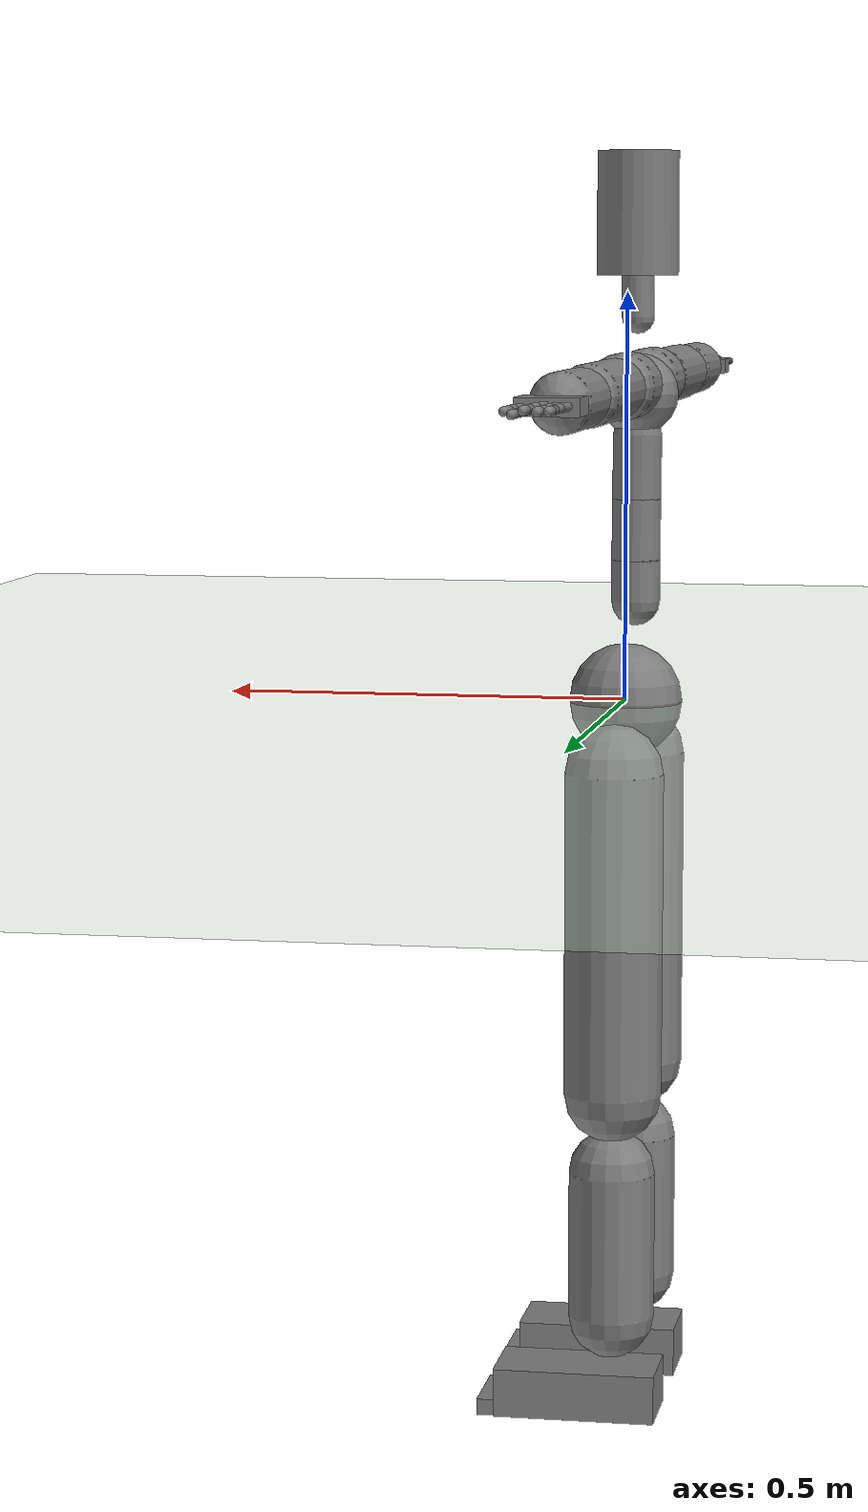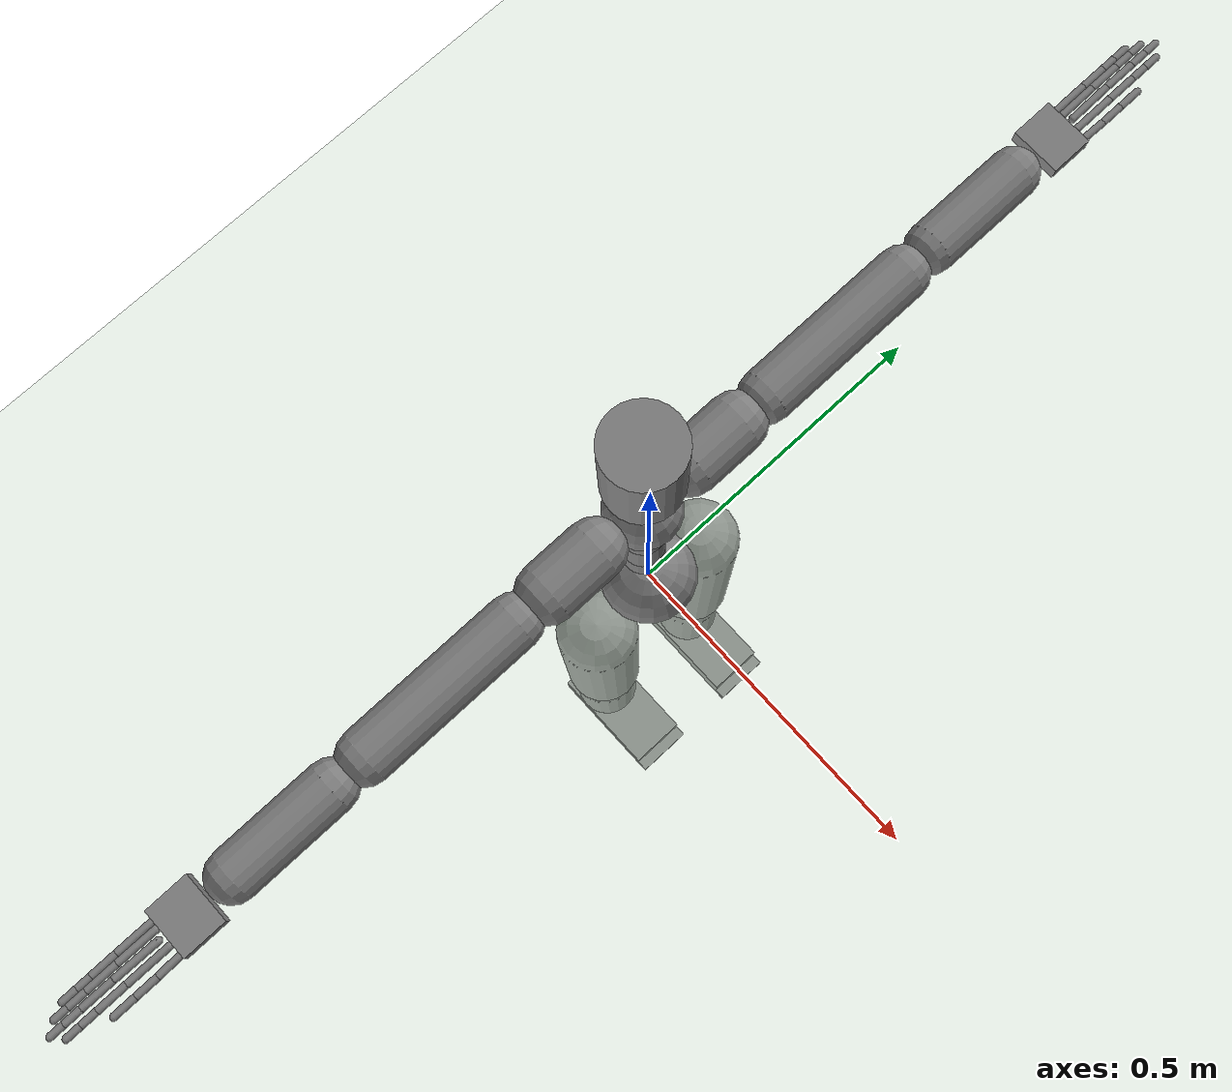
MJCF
<!-- change the damping from 50 to 500 -->
<mujoco model="humanoid">
  <compiler coordinate="local"/>
  <statistic extent="2" center="0 0 1"/>
  <option timestep="0.00555"/>
  <default>
    <motor ctrlrange="-1 1" ctrllimited="true"/>
    <geom type="capsule" condim="1" friction="1.0 0.05 0.05" solimp=".9 .99 .003" solref=".015 1"/>
    <joint type="hinge" damping="0.1" stiffness="5" armature=".007" limited="true" solimplimit="0 .99 .01"/>
    <site size=".04" group="3"/>
    <default class="force-torque">
      <site type="box" size=".01 .01 .02" rgba="1 0 0 1"/>
    </default>
    <default class="touch">
      <site type="capsule" rgba="0 0 1 .3"/>
    </default>
  </default>
  <asset>
    <texture type="skybox" builtin="gradient" rgb1=".4 .5 .6" rgb2="0 0 0" width="100" height="100"/>
    <texture builtin="flat" height="1278" mark="cross" markrgb="1 1 1" name="texgeom" random="0.01" rgb1="0.8 0.6 0.4" rgb2="0.8 0.6 0.4" type="cube" width="127"/>
    <texture builtin="checker" height="100" name="texplane" rgb1="0 0 0" rgb2="0.8 0.8 0.8" type="2d" width="100"/>
    <material name="MatPlane" reflectance="0.5" shininess="1" specular="1" texrepeat="60 60" texture="texplane"/>
    <material name="geom" texture="texgeom" texuniform="true"/>
  </asset>
  <worldbody>
    <light cutoff="100" diffuse="1 1 1" dir="-0 0 -1.3" directional="true" exponent="1" pos="0 0 1.3" specular=".1 .1 .1"/>
    <geom conaffinity="1" condim="3" name="floor" pos="0 0 0" rgba="0.8 0.9 0.8 1" size="100 100 .2" type="plane" material="MatPlane"/>
    <body name="pHipOrigin" pos="0 0 0">
      <freejoint name="pHipOrigin"/>
      <geom type="sphere" contype="1" conaffinity="1" density="4629.6296296296305" size="0.07011" pos="0.0000 0.0000 -0.0000"/>
      <body name="jL5S1" pos="-0.011425344862674696 0.0 0.10282781383579256">
        <geom type="capsule" contype="1" conaffinity="1" density="1000" fromto="0 0 0.02 0.0 0.0 0.07094710320234299" size="0.03"/>
        <joint name="jL5S1_x" type="hinge" pos="0 0 0" axis="1 0 0" stiffness="500" damping="500" armature="0.02" range="-180.0000 180.0000"/>
        <joint name="jL5S1_y" type="hinge" pos="0 0 0" axis="0 1 0" stiffness="500" damping="500" armature="0.02" range="-180.0000 180.0000"/>
        <joint name="jL5S1_z" type="hinge" pos="0 0 0" axis="0 0 1" stiffness="500" damping="500" armature="0.02" range="-180.0000 180.0000"/>
        <body name="jL4L3" pos="0.0 0.0 0.07094710320234299">
          <geom type="capsule" contype="1" conaffinity="1" density="1000" fromto="0 0 0 -0.0005797881968791788 0.0 0.0751508288362336" size="0.03"/>
          <joint name="jL4L3_x" type="hinge" pos="0 0 0" axis="1 0 0" stiffness="500" damping="500" armature="0.02" range="-180.0000 180.0000"/>
          <joint name="jL4L3_y" type="hinge" pos="0 0 0" axis="0 1 0" stiffness="500" damping="500" armature="0.02" range="-180.0000 180.0000"/>
          <joint name="jL4L3_z" type="hinge" pos="0 0 0" axis="0 0 1" stiffness="500" damping="500" armature="0.02" range="-180.0000 180.0000"/>
          <body name="jL1T12" pos="-0.0005797881968791788 0.0 0.0751508288362336">
            <geom type="capsule" contype="1" conaffinity="1" density="1000" fromto="0 0 0 -0.0006019627931392358 0.0 0.07787338147728723" size="0.03"/>
            <joint name="jL1T12_x" type="hinge" pos="0 0 0" axis="1 0 0" stiffness="500" damping="500" armature="0.02" range="-180.0000 180.0000"/>
            <joint name="jL1T12_y" type="hinge" pos="0 0 0" axis="0 1 0" stiffness="500" damping="500" armature="0.02" range="-180.0000 180.0000"/>
            <joint name="jL1T12_z" type="hinge" pos="0 0 0" axis="0 0 1" stiffness="500" damping="500" armature="0.02" range="-180.0000 180.0000"/>
            <body name="jT9T8" pos="-0.0006019627931392358 0.0 0.07787338147728723">
              <geom type="sphere" contype="1" conaffinity="1" density="1000" size="0.05011" pos="0.0000 0.0000 0.050000"/>
              <joint name="jT9T8_x" type="hinge" pos="0 0 0" axis="1 0 0" stiffness="500" damping="500" armature="0.02" range="-180.0000 180.0000"/>
              <joint name="jT9T8_y" type="hinge" pos="0 0 0" axis="0 1 0" stiffness="500" damping="500" armature="0.02" range="-180.0000 180.0000"/>
              <joint name="jT9T8_z" type="hinge" pos="0 0 0" axis="0 0 1" stiffness="500" damping="500" armature="0.02" range="-180.0000 180.0000"/>
              <body name="jT1C7" pos="0.0 0.0 0.11337298154830933">
                <geom type="capsule" contype="1" conaffinity="1" density="1000" fromto="0 0 0.03 0.0009471419075879093 0.0 0.08028245981936687" size="0.02"/>
                <joint name="jT1C7_x" type="hinge" pos="0 0 0" axis="1 0 0" stiffness="500" damping="500" armature="0.02" range="-180.0000 180.0000"/>
                <joint name="jT1C7_y" type="hinge" pos="0 0 0" axis="0 1 0" stiffness="500" damping="500" armature="0.02" range="-180.0000 180.0000"/>
                <joint name="jT1C7_z" type="hinge" pos="0 0 0" axis="0 0 1" stiffness="500" damping="500" armature="0.02" range="-180.0000 180.0000"/>
                <body name="jC1Head" pos="0.0009471419075879093 0.0 0.08028245981936687">
                  <geom type="cylinder" contype="1" conaffinity="1" density="1000" fromto="0 0 0 0 0 0.15" size="0.05"/>
                  <joint name="jC1Head_x" type="hinge" pos="0 0 0" axis="1 0 0" stiffness="500" damping="500" armature="0.02" range="-180.0000 180.0000"/>
                  <joint name="jC1Head_y" type="hinge" pos="0 0 0" axis="0 1 0" stiffness="500" damping="500" armature="0.02" range="-180.0000 180.0000"/>
                  <joint name="jC1Head_z" type="hinge" pos="0 0 0" axis="0 0 1" stiffness="500" damping="500" armature="0.02" range="-180.0000 180.0000"/>
                </body>
              </body>
              <body name="jRightT4Shoulder" pos="0.0 -0.02613416295799374 0.06372082527687808">
                <geom type="capsule" contype="1" conaffinity="1" density="1000" fromto="0 -0.05 0 0.0 -0.12579043209552765 0.0" size="0.04"/>
                <joint name="jRightT4Shoulder_x" type="hinge" pos="0 0 0" axis="1 0 0" stiffness="500" damping="500" armature="0.02" range="-180.0000 180.0000"/>
                <joint name="jRightT4Shoulder_y" type="hinge" pos="0 0 0" axis="0 1 0" stiffness="500" damping="500" armature="0.02" range="-180.0000 180.0000"/>
                <joint name="jRightT4Shoulder_z" type="hinge" pos="0 0 0" axis="0 0 1" stiffness="500" damping="500" armature="0.02" range="-180.0000 180.0000"/>
                <body name="jRightShoulder" pos="0.0 -0.12579043209552765 0.0">
                  <geom type="capsule" contype="1" conaffinity="1" density="1000" fromto="0 -0.05 0 0.0 -0.27853596210479736 0.0" size="0.036"/>
                  <joint name="jRightShoulder_x" type="hinge" pos="0 0 0" axis="1 0 0" stiffness="500" damping="500" armature="0.02" range="-180.0000 180.0000"/>
                  <joint name="jRightShoulder_y" type="hinge" pos="0 0 0" axis="0 1 0" stiffness="500" damping="500" armature="0.02" range="-180.0000 180.0000"/>
                  <joint name="jRightShoulder_z" type="hinge" pos="0 0 0" axis="0 0 1" stiffness="500" damping="500" armature="0.02" range="-180.0000 180.0000"/>
                  <body name="jRightElbow" pos="0.0 -0.27853596210479736 0.0">
                    <geom type="capsule" contype="1" conaffinity="1" density="1000" fromto="0 -0.05 0 0.00010477973115465072 -0.19433485379421794 0.0" size="0.034"/>
                    <joint name="jRightElbow_x" type="hinge" pos="0 0 0" axis="1 0 0" stiffness="500" damping="500" armature="0.02" range="-180.0000 180.0000"/>
                    <joint name="jRightElbow_y" type="hinge" pos="0 0 0" axis="0 1 0" stiffness="500" damping="500" armature="0.02" range="-180.0000 180.0000"/>
                    <joint name="jRightElbow_z" type="hinge" pos="0 0 0" axis="0 0 1" stiffness="500" damping="500" armature="0.02" range="-180.0000 180.0000"/>
                    <body name="jRightWrist" pos="0.00010477973115465072 -0.26033485379421795 0.0">
                      <geom density="1000" type="box" pos="0 0 0" size="0.035 0.03 0.01" quat="1.0 0 0 0"/>
                      <joint name="jRightWrist_x" type="hinge" pos="0 0 0" axis="1 0 0" stiffness="500" damping="500" armature="0.02" range="-180.0000 180.0000"/>
                      <joint name="jRightWrist_y" type="hinge" pos="0 0 0" axis="0 1 0" stiffness="500" damping="500" armature="0.02" range="-180.0000 180.0000"/>
                      <joint name="jRightWrist_z" type="hinge" pos="0 0 0" axis="0 0 1" stiffness="500" damping="500" armature="0.02" range="-180.0000 180.0000"/>
                      <body name="jRightFirstCMC" pos="0.027377404 -0.026242778 -0.0012398164">
                        <geom type="capsule" contype="1" conaffinity="1" density="1000" fromto="0 0 0 0.001369310193695128 -0.038641028106212616 0.000816482410300523" size="0.005"/>
                        <joint name="jRightFirstCMC_x" type="hinge" pos="0 0 0" axis="1 0 0" stiffness="500" damping="500" armature="0.02" range="-180.0000 180.0000"/>
                        <joint name="jRightFirstCMC_y" type="hinge" pos="0 0 0" axis="0 1 0" stiffness="500" damping="500" armature="0.02" range="-180.0000 180.0000"/>
                        <joint name="jRightFirstCMC_z" type="hinge" pos="0 0 0" axis="0 0 1" stiffness="500" damping="500" armature="0.02" range="-180.0000 180.0000"/>
                        <body name="jRightFirstMCP" pos="0.0013693102 -0.038641028 0.0008164824">
                          <geom type="capsule" contype="1" conaffinity="1" density="1000" fromto="0 0 0 0.0 -0.03138667345046997 0.0" size="0.005"/>
                          <joint name="jRightFirstMCP_x" type="hinge" pos="0 0 0" axis="1 0 0" stiffness="500" damping="500" armature="0.02" range="-180.0000 180.0000"/>
                          <joint name="jRightFirstMCP_y" type="hinge" pos="0 0 0" axis="0 1 0" stiffness="500" damping="500" armature="0.02" range="-180.0000 180.0000"/>
                          <joint name="jRightFirstMCP_z" type="hinge" pos="0 0 0" axis="0 0 1" stiffness="500" damping="500" armature="0.02" range="-180.0000 180.0000"/>
                          <body name="jRightIP" pos="0.0 -0.031386673 0.0">
                            <geom type="capsule" contype="1" conaffinity="1" density="1000" fromto="0 0 0 0.0 -0.031366512179374695 0.0" size="0.005"/>
                            <joint name="jRightIP_x" type="hinge" pos="0 0 0" axis="1 0 0" stiffness="500" damping="500" armature="0.02" range="-180.0000 180.0000"/>
                            <joint name="jRightIP_y" type="hinge" pos="0 0 0" axis="0 1 0" stiffness="500" damping="500" armature="0.02" range="-180.0000 180.0000"/>
                            <joint name="jRightIP_z" type="hinge" pos="0 0 0" axis="0 0 1" stiffness="500" damping="500" armature="0.02" range="-180.0000 180.0000"/>
                          </body>
                        </body>
                      </body>
                      <body name="jRightSecondCMC" pos="0.011870263 -0.034681153 -0.00060492347">
                        <geom type="capsule" contype="1" conaffinity="1" density="1000" fromto="0 0 0 -0.0003813645162153989 -0.06082478165626526 -0.0006309545715339482" size="0.005"/>
                        <joint name="jRightSecondCMC_x" type="hinge" pos="0 0 0" axis="1 0 0" stiffness="500" damping="500" armature="0.02" range="-180.0000 180.0000"/>
                        <joint name="jRightSecondCMC_y" type="hinge" pos="0 0 0" axis="0 1 0" stiffness="500" damping="500" armature="0.02" range="-180.0000 180.0000"/>
                        <joint name="jRightSecondCMC_z" type="hinge" pos="0 0 0" axis="0 0 1" stiffness="500" damping="500" armature="0.02" range="-180.0000 180.0000"/>
                        <body name="jRightSecondMCP" pos="-0.00038136452 -0.06082478 -0.0006309546">
                          <geom type="capsule" contype="1" conaffinity="1" density="1000" fromto="0 0 0 0.0 -0.04176747053861618 0.0" size="0.005"/>
                          <joint name="jRightSecondMCP_x" type="hinge" pos="0 0 0" axis="1 0 0" stiffness="500" damping="500" armature="0.02" range="-180.0000 180.0000"/>
                          <joint name="jRightSecondMCP_y" type="hinge" pos="0 0 0" axis="0 1 0" stiffness="500" damping="500" armature="0.02" range="-180.0000 180.0000"/>
                          <joint name="jRightSecondMCP_z" type="hinge" pos="0 0 0" axis="0 0 1" stiffness="500" damping="500" armature="0.02" range="-180.0000 180.0000"/>
                          <body name="jRightSecondPIP" pos="0.0 -0.04176747 0.0">
                            <geom type="capsule" contype="1" conaffinity="1" density="1000" fromto="0 0 0 0.0 -0.02283315360546112 0.0" size="0.005"/>
                            <joint name="jRightSecondPIP_x" type="hinge" pos="0 0 0" axis="1 0 0" stiffness="500" damping="500" armature="0.02" range="-180.0000 180.0000"/>
                            <joint name="jRightSecondPIP_y" type="hinge" pos="0 0 0" axis="0 1 0" stiffness="500" damping="500" armature="0.02" range="-180.0000 180.0000"/>
                            <joint name="jRightSecondPIP_z" type="hinge" pos="0 0 0" axis="0 0 1" stiffness="500" damping="500" armature="0.02" range="-180.0000 180.0000"/>
                            <body name="jRightSecondDIP" pos="0.0 -0.022833154 0.0">
                              <geom type="capsule" contype="1" conaffinity="1" density="1000" fromto="0 0 0 0.0 -0.020512670278549194 0.0" size="0.005"/>
                              <joint name="jRightSecondDIP_x" type="hinge" pos="0 0 0" axis="1 0 0" stiffness="500" damping="500" armature="0.02" range="-180.0000 180.0000"/>
                              <joint name="jRightSecondDIP_y" type="hinge" pos="0 0 0" axis="0 1 0" stiffness="500" damping="500" armature="0.02" range="-180.0000 180.0000"/>
                              <joint name="jRightSecondDIP_z" type="hinge" pos="0 0 0" axis="0 0 1" stiffness="500" damping="500" armature="0.02" range="-180.0000 180.0000"/>
                            </body>
                          </body>
                        </body>
                      </body>
                      <body name="jRightThirdCMC" pos="-0.00074524403 -0.040301077 0.0016943185">
                        <geom type="capsule" contype="1" conaffinity="1" density="1000" fromto="0 0 0 -0.0007466499228030443 -0.06186005845665932 0.001682974398136139" size="0.005"/>
                        <joint name="jRightThirdCMC_x" type="hinge" pos="0 0 0" axis="1 0 0" stiffness="500" damping="500" armature="0.02" range="-180.0000 180.0000"/>
                        <joint name="jRightThirdCMC_y" type="hinge" pos="0 0 0" axis="0 1 0" stiffness="500" damping="500" armature="0.02" range="-180.0000 180.0000"/>
                        <joint name="jRightThirdCMC_z" type="hinge" pos="0 0 0" axis="0 0 1" stiffness="500" damping="500" armature="0.02" range="-180.0000 180.0000"/>
                        <body name="jRightThirdMCP" pos="-0.0007466499 -0.06186006 0.0016829744">
                          <geom type="capsule" contype="1" conaffinity="1" density="1000" fromto="0 0 0 0.0 -0.04531874507665634 0.0" size="0.005"/>
                          <joint name="jRightThirdMCP_x" type="hinge" pos="0 0 0" axis="1 0 0" stiffness="500" damping="500" armature="0.02" range="-180.0000 180.0000"/>
                          <joint name="jRightThirdMCP_y" type="hinge" pos="0 0 0" axis="0 1 0" stiffness="500" damping="500" armature="0.02" range="-180.0000 180.0000"/>
                          <joint name="jRightThirdMCP_z" type="hinge" pos="0 0 0" axis="0 0 1" stiffness="500" damping="500" armature="0.02" range="-180.0000 180.0000"/>
                          <body name="jRightThirdPIP" pos="0.0 -0.045318745 0.0">
                            <geom type="capsule" contype="1" conaffinity="1" density="1000" fromto="0 0 0 0.0 -0.024224743247032166 0.0" size="0.005"/>
                            <joint name="jRightThirdPIP_x" type="hinge" pos="0 0 0" axis="1 0 0" stiffness="500" damping="500" armature="0.02" range="-180.0000 180.0000"/>
                            <joint name="jRightThirdPIP_y" type="hinge" pos="0 0 0" axis="0 1 0" stiffness="500" damping="500" armature="0.02" range="-180.0000 180.0000"/>
                            <joint name="jRightThirdPIP_z" type="hinge" pos="0 0 0" axis="0 0 1" stiffness="500" damping="500" armature="0.02" range="-180.0000 180.0000"/>
                            <body name="jRightThirdDIP" pos="0.0 -0.024224743 0.0">
                              <geom type="capsule" contype="1" conaffinity="1" density="1000" fromto="0 0 0 0.0 -0.019253596663475037 0.0" size="0.005"/>
                              <joint name="jRightThirdDIP_x" type="hinge" pos="0 0 0" axis="1 0 0" stiffness="500" damping="500" armature="0.02" range="-180.0000 180.0000"/>
                              <joint name="jRightThirdDIP_y" type="hinge" pos="0 0 0" axis="0 1 0" stiffness="500" damping="500" armature="0.02" range="-180.0000 180.0000"/>
                              <joint name="jRightThirdDIP_z" type="hinge" pos="0 0 0" axis="0 0 1" stiffness="500" damping="500" armature="0.02" range="-180.0000 180.0000"/>
                            </body>
                          </body>
                        </body>
                      </body>
                      <body name="jRightFourthCMC" pos="-0.012375269 -0.03446717 0.00081130315">
                        <geom type="capsule" contype="1" conaffinity="1" density="1000" fromto="0 0 0 -0.00039672848652116954 -0.054375503212213516 0.000854282290674746" size="0.005"/>
                        <joint name="jRightFourthCMC_x" type="hinge" pos="0 0 0" axis="1 0 0" stiffness="500" damping="500" armature="0.02" range="-180.0000 180.0000"/>
                        <joint name="jRightFourthCMC_y" type="hinge" pos="0 0 0" axis="0 1 0" stiffness="500" damping="500" armature="0.02" range="-180.0000 180.0000"/>
                        <joint name="jRightFourthCMC_z" type="hinge" pos="0 0 0" axis="0 0 1" stiffness="500" damping="500" armature="0.02" range="-180.0000 180.0000"/>
                        <body name="jRightFourthMCP" pos="-0.0003967285 -0.054375503 0.0008542823">
                          <geom type="capsule" contype="1" conaffinity="1" density="1000" fromto="0 0 0 0.0 -0.04341105371713638 0.0" size="0.005"/>
                          <joint name="jRightFourthMCP_x" type="hinge" pos="0 0 0" axis="1 0 0" stiffness="500" damping="500" armature="0.02" range="-180.0000 180.0000"/>
                          <joint name="jRightFourthMCP_y" type="hinge" pos="0 0 0" axis="0 1 0" stiffness="500" damping="500" armature="0.02" range="-180.0000 180.0000"/>
                          <joint name="jRightFourthMCP_z" type="hinge" pos="0 0 0" axis="0 0 1" stiffness="500" damping="500" armature="0.02" range="-180.0000 180.0000"/>
                          <body name="jRightFourthPIP" pos="0.0 -0.043411054 0.0">
                            <geom type="capsule" contype="1" conaffinity="1" density="1000" fromto="0 0 0 0.0 -0.025389045476913452 0.0" size="0.005"/>
                            <joint name="jRightFourthPIP_x" type="hinge" pos="0 0 0" axis="1 0 0" stiffness="500" damping="500" armature="0.02" range="-180.0000 180.0000"/>
                            <joint name="jRightFourthPIP_y" type="hinge" pos="0 0 0" axis="0 1 0" stiffness="500" damping="500" armature="0.02" range="-180.0000 180.0000"/>
                            <joint name="jRightFourthPIP_z" type="hinge" pos="0 0 0" axis="0 0 1" stiffness="500" damping="500" armature="0.02" range="-180.0000 180.0000"/>
                            <body name="jRightFourthDIP" pos="0.0 -0.025389045 0.0">
                              <geom type="capsule" contype="1" conaffinity="1" density="1000" fromto="0 0 0 0.0 -0.019513875246047974 0.0" size="0.005"/>
                              <joint name="jRightFourthDIP_x" type="hinge" pos="0 0 0" axis="1 0 0" stiffness="500" damping="500" armature="0.02" range="-180.0000 180.0000"/>
                              <joint name="jRightFourthDIP_y" type="hinge" pos="0 0 0" axis="0 1 0" stiffness="500" damping="500" armature="0.02" range="-180.0000 180.0000"/>
                              <joint name="jRightFourthDIP_z" type="hinge" pos="0 0 0" axis="0 0 1" stiffness="500" damping="500" armature="0.02" range="-180.0000 180.0000"/>
                            </body>
                          </body>
                        </body>
                      </body>
                      <body name="jRightFifthCMC" pos="-0.021640038 -0.030152926 0.00059482036">
                        <geom type="capsule" contype="1" conaffinity="1" density="1000" fromto="0 0 0 -7.763529538351577e-06 -0.052561599761247635 0.0007233130163513124" size="0.005"/>
                        <joint name="jRightFifthCMC_x" type="hinge" pos="0 0 0" axis="1 0 0" stiffness="500" damping="500" armature="0.02" range="-180.0000 180.0000"/>
                        <joint name="jRightFifthCMC_y" type="hinge" pos="0 0 0" axis="0 1 0" stiffness="500" damping="500" armature="0.02" range="-180.0000 180.0000"/>
                        <joint name="jRightFifthCMC_z" type="hinge" pos="0 0 0" axis="0 0 1" stiffness="500" damping="500" armature="0.02" range="-180.0000 180.0000"/>
                        <body name="jRightFifthMCP" pos="-7.7635295e-06 -0.0525616 0.000723313">
                          <geom type="capsule" contype="1" conaffinity="1" density="1000" fromto="0 0 0 0.0 -0.035813137888908386 0.0" size="0.005"/>
                          <joint name="jRightFifthMCP_x" type="hinge" pos="0 0 0" axis="1 0 0" stiffness="500" damping="500" armature="0.02" range="-180.0000 180.0000"/>
                          <joint name="jRightFifthMCP_y" type="hinge" pos="0 0 0" axis="0 1 0" stiffness="500" damping="500" armature="0.02" range="-180.0000 180.0000"/>
                          <joint name="jRightFifthMCP_z" type="hinge" pos="0 0 0" axis="0 0 1" stiffness="500" damping="500" armature="0.02" range="-180.0000 180.0000"/>
                          <body name="jRightFifthPIP" pos="0.0 -0.035813138 0.0">
                            <geom type="capsule" contype="1" conaffinity="1" density="1000" fromto="0 0 0 0.0 -0.019680529832839966 0.0" size="0.005"/>
                            <joint name="jRightFifthPIP_x" type="hinge" pos="0 0 0" axis="1 0 0" stiffness="500" damping="500" armature="0.02" range="-180.0000 180.0000"/>
                            <joint name="jRightFifthPIP_y" type="hinge" pos="0 0 0" axis="0 1 0" stiffness="500" damping="500" armature="0.02" range="-180.0000 180.0000"/>
                            <joint name="jRightFifthPIP_z" type="hinge" pos="0 0 0" axis="0 0 1" stiffness="500" damping="500" armature="0.02" range="-180.0000 180.0000"/>
                            <body name="jRightFifthDIP" pos="0.0 -0.01968053 0.0">
                              <geom type="capsule" contype="1" conaffinity="1" density="1000" fromto="0 0 0 0.0 -0.02087855339050293 0.0" size="0.005"/>
                              <joint name="jRightFifthDIP_x" type="hinge" pos="0 0 0" axis="1 0 0" stiffness="500" damping="500" armature="0.02" range="-180.0000 180.0000"/>
                              <joint name="jRightFifthDIP_y" type="hinge" pos="0 0 0" axis="0 1 0" stiffness="500" damping="500" armature="0.02" range="-180.0000 180.0000"/>
                              <joint name="jRightFifthDIP_z" type="hinge" pos="0 0 0" axis="0 0 1" stiffness="500" damping="500" armature="0.02" range="-180.0000 180.0000"/>
                            </body>
                          </body>
                        </body>
                      </body>
                    </body>
                  </body>
                </body>
              </body>
              <body name="jLeftT4Shoulder" pos="0.0 0.02612775462913112 0.06370520036459648">
                <geom type="capsule" contype="1" conaffinity="1" density="1000" fromto="0 0.05 0 0.0 0.1260785460472107 0.0" size="0.04"/>
                <joint name="jLeftT4Shoulder_x" type="hinge" pos="0 0 0" axis="1 0 0" stiffness="500" damping="500" armature="0.02" range="-180.0000 180.0000"/>
                <joint name="jLeftT4Shoulder_y" type="hinge" pos="0 0 0" axis="0 1 0" stiffness="500" damping="500" armature="0.02" range="-180.0000 180.0000"/>
                <joint name="jLeftT4Shoulder_z" type="hinge" pos="0 0 0" axis="0 0 1" stiffness="500" damping="500" armature="0.02" range="-180.0000 180.0000"/>
                <body name="jLeftShoulder" pos="0.0 0.1260785460472107 0.0">
                  <geom type="capsule" contype="1" conaffinity="1" density="1000" fromto="0 0.05 0 0.0 0.27934905886650085 0.0" size="0.036"/>
                  <joint name="jLeftShoulder_x" type="hinge" pos="0 0 0" axis="1 0 0" stiffness="500" damping="500" armature="0.02" range="-180.0000 180.0000"/>
                  <joint name="jLeftShoulder_y" type="hinge" pos="0 0 0" axis="0 1 0" stiffness="500" damping="500" armature="0.02" range="-180.0000 180.0000"/>
                  <joint name="jLeftShoulder_z" type="hinge" pos="0 0 0" axis="0 0 1" stiffness="500" damping="500" armature="0.02" range="-180.0000 180.0000"/>
                  <body name="jLeftElbow" pos="0.0 0.27934905886650085 0.0">
                    <geom type="capsule" contype="1" conaffinity="1" density="1000" fromto="0 0.05 0 0.00010498278007313459 0.19483934745844156 0.0" size="0.034"/>
                    <joint name="jLeftElbow_x" type="hinge" pos="0 0 0" axis="1 0 0" stiffness="500" damping="500" armature="0.02" range="-180.0000 180.0000"/>
                    <joint name="jLeftElbow_y" type="hinge" pos="0 0 0" axis="0 1 0" stiffness="500" damping="500" armature="0.02" range="-180.0000 180.0000"/>
                    <joint name="jLeftElbow_z" type="hinge" pos="0 0 0" axis="0 0 1" stiffness="500" damping="500" armature="0.02" range="-180.0000 180.0000"/>
                    <body name="jLeftWrist" pos="0.00010498278007313459 0.26083934745844156 0.0">
                      <geom density="1000" type="box" pos="0 0 0" size="0.035 0.03 0.01" quat="1.0 0 0 0"/>
                      <joint name="jLeftWrist_x" type="hinge" pos="0 0 0" axis="1 0 0" stiffness="500" damping="500" armature="0.02" range="-180.0000 180.0000"/>
                      <joint name="jLeftWrist_y" type="hinge" pos="0 0 0" axis="0 1 0" stiffness="500" damping="500" armature="0.02" range="-180.0000 180.0000"/>
                      <joint name="jLeftWrist_z" type="hinge" pos="0 0 0" axis="0 0 1" stiffness="500" damping="500" armature="0.02" range="-180.0000 180.0000"/>
                      <body name="jLeftFirstCMC" pos="0.02679603 0.026859311 -0.001199302">
                        <geom type="capsule" contype="1" conaffinity="1" density="1000" fromto="0 0 0 0.001356119872070849 0.038640160113573074 0.0007956935442052782" size="0.005"/>
                        <joint name="jLeftFirstCMC_x" type="hinge" pos="0 0 0" axis="1 0 0" stiffness="500" damping="500" armature="0.02" range="-180.0000 180.0000"/>
                        <joint name="jLeftFirstCMC_y" type="hinge" pos="0 0 0" axis="0 1 0" stiffness="500" damping="500" armature="0.02" range="-180.0000 180.0000"/>
                        <joint name="jLeftFirstCMC_z" type="hinge" pos="0 0 0" axis="0 0 1" stiffness="500" damping="500" armature="0.02" range="-180.0000 180.0000"/>
                        <body name="jLeftFirstMCP" pos="0.0013561199 0.03864016 0.00079569354">
                          <geom type="capsule" contype="1" conaffinity="1" density="1000" fromto="0 0 0 0.0 0.03138667345046997 0.0" size="0.005"/>
                          <joint name="jLeftFirstMCP_x" type="hinge" pos="0 0 0" axis="1 0 0" stiffness="500" damping="500" armature="0.02" range="-180.0000 180.0000"/>
                          <joint name="jLeftFirstMCP_y" type="hinge" pos="0 0 0" axis="0 1 0" stiffness="500" damping="500" armature="0.02" range="-180.0000 180.0000"/>
                          <joint name="jLeftFirstMCP_z" type="hinge" pos="0 0 0" axis="0 0 1" stiffness="500" damping="500" armature="0.02" range="-180.0000 180.0000"/>
                          <body name="jLeftIP" pos="0.0 0.031386673 0.0">
                            <geom type="capsule" contype="1" conaffinity="1" density="1000" fromto="0 0 0 0.0 0.031366512179374695 0.0" size="0.005"/>
                            <joint name="jLeftIP_x" type="hinge" pos="0 0 0" axis="1 0 0" stiffness="500" damping="500" armature="0.02" range="-180.0000 180.0000"/>
                            <joint name="jLeftIP_y" type="hinge" pos="0 0 0" axis="0 1 0" stiffness="500" damping="500" armature="0.02" range="-180.0000 180.0000"/>
                            <joint name="jLeftIP_z" type="hinge" pos="0 0 0" axis="0 0 1" stiffness="500" damping="500" armature="0.02" range="-180.0000 180.0000"/>
                          </body>
                        </body>
                      </body>
                      <body name="jLeftSecondCMC" pos="0.012006988 0.03461734 -0.0006099189">
                        <geom type="capsule" contype="1" conaffinity="1" density="1000" fromto="0 0 0 -0.0003325246216263622 0.060826029628515244 -0.0006387490429915488" size="0.005"/>
                        <joint name="jLeftSecondCMC_x" type="hinge" pos="0 0 0" axis="1 0 0" stiffness="500" damping="500" armature="0.02" range="-180.0000 180.0000"/>
                        <joint name="jLeftSecondCMC_y" type="hinge" pos="0 0 0" axis="0 1 0" stiffness="500" damping="500" armature="0.02" range="-180.0000 180.0000"/>
                        <joint name="jLeftSecondCMC_z" type="hinge" pos="0 0 0" axis="0 0 1" stiffness="500" damping="500" armature="0.02" range="-180.0000 180.0000"/>
                        <body name="jLeftSecondMCP" pos="-0.00033252462 0.06082603 -0.00063874904">
                          <geom type="capsule" contype="1" conaffinity="1" density="1000" fromto="0 0 0 0.0 0.04176747053861618 0.0" size="0.005"/>
                          <joint name="jLeftSecondMCP_x" type="hinge" pos="0 0 0" axis="1 0 0" stiffness="500" damping="500" armature="0.02" range="-180.0000 180.0000"/>
                          <joint name="jLeftSecondMCP_y" type="hinge" pos="0 0 0" axis="0 1 0" stiffness="500" damping="500" armature="0.02" range="-180.0000 180.0000"/>
                          <joint name="jLeftSecondMCP_z" type="hinge" pos="0 0 0" axis="0 0 1" stiffness="500" damping="500" armature="0.02" range="-180.0000 180.0000"/>
                          <body name="jLeftSecondPIP" pos="0.0 0.04176747 0.0">
                            <geom type="capsule" contype="1" conaffinity="1" density="1000" fromto="0 0 0 0.0 0.02283315360546112 0.0" size="0.005"/>
                            <joint name="jLeftSecondPIP_x" type="hinge" pos="0 0 0" axis="1 0 0" stiffness="500" damping="500" armature="0.02" range="-180.0000 180.0000"/>
                            <joint name="jLeftSecondPIP_y" type="hinge" pos="0 0 0" axis="0 1 0" stiffness="500" damping="500" armature="0.02" range="-180.0000 180.0000"/>
                            <joint name="jLeftSecondPIP_z" type="hinge" pos="0 0 0" axis="0 0 1" stiffness="500" damping="500" armature="0.02" range="-180.0000 180.0000"/>
                            <body name="jLeftSecondDIP" pos="0.0 0.022833154 0.0">
                              <geom type="capsule" contype="1" conaffinity="1" density="1000" fromto="0 0 0 0.0 0.020512670278549194 0.0" size="0.005"/>
                              <joint name="jLeftSecondDIP_x" type="hinge" pos="0 0 0" axis="1 0 0" stiffness="500" damping="500" armature="0.02" range="-180.0000 180.0000"/>
                              <joint name="jLeftSecondDIP_y" type="hinge" pos="0 0 0" axis="0 1 0" stiffness="500" damping="500" armature="0.02" range="-180.0000 180.0000"/>
                              <joint name="jLeftSecondDIP_z" type="hinge" pos="0 0 0" axis="0 0 1" stiffness="500" damping="500" armature="0.02" range="-180.0000 180.0000"/>
                            </body>
                          </body>
                        </body>
                      </body>
                      <body name="jLeftThirdCMC" pos="-0.0007496192 0.040304698 0.0016378406">
                        <geom type="capsule" contype="1" conaffinity="1" density="1000" fromto="0 0 0 -0.0007526765111833811 0.06186125800013542 0.0016491401474922895" size="0.005"/>
                        <joint name="jLeftThirdCMC_x" type="hinge" pos="0 0 0" axis="1 0 0" stiffness="500" damping="500" armature="0.02" range="-180.0000 180.0000"/>
                        <joint name="jLeftThirdCMC_y" type="hinge" pos="0 0 0" axis="0 1 0" stiffness="500" damping="500" armature="0.02" range="-180.0000 180.0000"/>
                        <joint name="jLeftThirdCMC_z" type="hinge" pos="0 0 0" axis="0 0 1" stiffness="500" damping="500" armature="0.02" range="-180.0000 180.0000"/>
                        <body name="jLeftThirdMCP" pos="-0.0007526765 0.061861258 0.0016491401">
                          <geom type="capsule" contype="1" conaffinity="1" density="1000" fromto="0 0 0 0.0 0.04531874507665634 0.0" size="0.005"/>
                          <joint name="jLeftThirdMCP_x" type="hinge" pos="0 0 0" axis="1 0 0" stiffness="500" damping="500" armature="0.02" range="-180.0000 180.0000"/>
                          <joint name="jLeftThirdMCP_y" type="hinge" pos="0 0 0" axis="0 1 0" stiffness="500" damping="500" armature="0.02" range="-180.0000 180.0000"/>
                          <joint name="jLeftThirdMCP_z" type="hinge" pos="0 0 0" axis="0 0 1" stiffness="500" damping="500" armature="0.02" range="-180.0000 180.0000"/>
                          <body name="jLeftThirdPIP" pos="0.0 0.045318745 0.0">
                            <geom type="capsule" contype="1" conaffinity="1" density="1000" fromto="0 0 0 0.0 0.024224743247032166 0.0" size="0.005"/>
                            <joint name="jLeftThirdPIP_x" type="hinge" pos="0 0 0" axis="1 0 0" stiffness="500" damping="500" armature="0.02" range="-180.0000 180.0000"/>
                            <joint name="jLeftThirdPIP_y" type="hinge" pos="0 0 0" axis="0 1 0" stiffness="500" damping="500" armature="0.02" range="-180.0000 180.0000"/>
                            <joint name="jLeftThirdPIP_z" type="hinge" pos="0 0 0" axis="0 0 1" stiffness="500" damping="500" armature="0.02" range="-180.0000 180.0000"/>
                            <body name="jLeftThirdDIP" pos="0.0 0.024224743 0.0">
                              <geom type="capsule" contype="1" conaffinity="1" density="1000" fromto="0 0 0 0.0 0.019253596663475037 0.0" size="0.005"/>
                              <joint name="jLeftThirdDIP_x" type="hinge" pos="0 0 0" axis="1 0 0" stiffness="500" damping="500" armature="0.02" range="-180.0000 180.0000"/>
                              <joint name="jLeftThirdDIP_y" type="hinge" pos="0 0 0" axis="0 1 0" stiffness="500" damping="500" armature="0.02" range="-180.0000 180.0000"/>
                              <joint name="jLeftThirdDIP_z" type="hinge" pos="0 0 0" axis="0 0 1" stiffness="500" damping="500" armature="0.02" range="-180.0000 180.0000"/>
                            </body>
                          </body>
                        </body>
                      </body>
                      <body name="jLeftFourthCMC" pos="-0.01282936 0.034290865 0.0008660584">
                        <geom type="capsule" contype="1" conaffinity="1" density="1000" fromto="0 0 0 -0.00042664475040510297 0.0543723925948143 0.0009035018156282604" size="0.005"/>
                        <joint name="jLeftFourthCMC_x" type="hinge" pos="0 0 0" axis="1 0 0" stiffness="500" damping="500" armature="0.02" range="-180.0000 180.0000"/>
                        <joint name="jLeftFourthCMC_y" type="hinge" pos="0 0 0" axis="0 1 0" stiffness="500" damping="500" armature="0.02" range="-180.0000 180.0000"/>
                        <joint name="jLeftFourthCMC_z" type="hinge" pos="0 0 0" axis="0 0 1" stiffness="500" damping="500" armature="0.02" range="-180.0000 180.0000"/>
                        <body name="jLeftFourthMCP" pos="-0.00042664475 0.054372393 0.0009035018">
                          <geom type="capsule" contype="1" conaffinity="1" density="1000" fromto="0 0 0 0.0 0.04341105371713638 0.0" size="0.005"/>
                          <joint name="jLeftFourthMCP_x" type="hinge" pos="0 0 0" axis="1 0 0" stiffness="500" damping="500" armature="0.02" range="-180.0000 180.0000"/>
                          <joint name="jLeftFourthMCP_y" type="hinge" pos="0 0 0" axis="0 1 0" stiffness="500" damping="500" armature="0.02" range="-180.0000 180.0000"/>
                          <joint name="jLeftFourthMCP_z" type="hinge" pos="0 0 0" axis="0 0 1" stiffness="500" damping="500" armature="0.02" range="-180.0000 180.0000"/>
                          <body name="jLeftFourthPIP" pos="0.0 0.043411054 0.0">
                            <geom type="capsule" contype="1" conaffinity="1" density="1000" fromto="0 0 0 0.0 0.025389045476913452 0.0" size="0.005"/>
                            <joint name="jLeftFourthPIP_x" type="hinge" pos="0 0 0" axis="1 0 0" stiffness="500" damping="500" armature="0.02" range="-180.0000 180.0000"/>
                            <joint name="jLeftFourthPIP_y" type="hinge" pos="0 0 0" axis="0 1 0" stiffness="500" damping="500" armature="0.02" range="-180.0000 180.0000"/>
                            <joint name="jLeftFourthPIP_z" type="hinge" pos="0 0 0" axis="0 0 1" stiffness="500" damping="500" armature="0.02" range="-180.0000 180.0000"/>
                            <body name="jLeftFourthDIP" pos="0.0 0.025389045 0.0">
                              <geom type="capsule" contype="1" conaffinity="1" density="1000" fromto="0 0 0 0.0 0.019513875246047974 0.0" size="0.005"/>
                              <joint name="jLeftFourthDIP_x" type="hinge" pos="0 0 0" axis="1 0 0" stiffness="500" damping="500" armature="0.02" range="-180.0000 180.0000"/>
                              <joint name="jLeftFourthDIP_y" type="hinge" pos="0 0 0" axis="0 1 0" stiffness="500" damping="500" armature="0.02" range="-180.0000 180.0000"/>
                              <joint name="jLeftFourthDIP_z" type="hinge" pos="0 0 0" axis="0 0 1" stiffness="500" damping="500" armature="0.02" range="-180.0000 180.0000"/>
                            </body>
                          </body>
                        </body>
                      </body>
                      <body name="jLeftFifthCMC" pos="-0.022295598 0.029676234 0.00060438114">
                        <geom type="capsule" contype="1" conaffinity="1" density="1000" fromto="0 0 0 -1.4906286196492147e-05 0.052560169249773026 0.0007563076796941459" size="0.005"/>
                        <joint name="jLeftFifthCMC_x" type="hinge" pos="0 0 0" axis="1 0 0" stiffness="500" damping="500" armature="0.02" range="-180.0000 180.0000"/>
                        <joint name="jLeftFifthCMC_y" type="hinge" pos="0 0 0" axis="0 1 0" stiffness="500" damping="500" armature="0.02" range="-180.0000 180.0000"/>
                        <joint name="jLeftFifthCMC_z" type="hinge" pos="0 0 0" axis="0 0 1" stiffness="500" damping="500" armature="0.02" range="-180.0000 180.0000"/>
                        <body name="jLeftFifthMCP" pos="-1.4906286e-05 0.05256017 0.0007563077">
                          <geom type="capsule" contype="1" conaffinity="1" density="1000" fromto="0 0 0 0.0 0.035813137888908386 0.0" size="0.005"/>
                          <joint name="jLeftFifthMCP_x" type="hinge" pos="0 0 0" axis="1 0 0" stiffness="500" damping="500" armature="0.02" range="-180.0000 180.0000"/>
                          <joint name="jLeftFifthMCP_y" type="hinge" pos="0 0 0" axis="0 1 0" stiffness="500" damping="500" armature="0.02" range="-180.0000 180.0000"/>
                          <joint name="jLeftFifthMCP_z" type="hinge" pos="0 0 0" axis="0 0 1" stiffness="500" damping="500" armature="0.02" range="-180.0000 180.0000"/>
                          <body name="jLeftFifthPIP" pos="0.0 0.035813138 0.0">
                            <geom type="capsule" contype="1" conaffinity="1" density="1000" fromto="0 0 0 0.0 0.019680529832839966 0.0" size="0.005"/>
                            <joint name="jLeftFifthPIP_x" type="hinge" pos="0 0 0" axis="1 0 0" stiffness="500" damping="500" armature="0.02" range="-180.0000 180.0000"/>
                            <joint name="jLeftFifthPIP_y" type="hinge" pos="0 0 0" axis="0 1 0" stiffness="500" damping="500" armature="0.02" range="-180.0000 180.0000"/>
                            <joint name="jLeftFifthPIP_z" type="hinge" pos="0 0 0" axis="0 0 1" stiffness="500" damping="500" armature="0.02" range="-180.0000 180.0000"/>
                            <body name="jLeftFifthDIP" pos="0.0 0.01968053 0.0">
                              <geom type="capsule" contype="1" conaffinity="1" density="1000" fromto="0 0 0 0.0 0.02087855339050293 0.0" size="0.005"/>
                              <joint name="jLeftFifthDIP_x" type="hinge" pos="0 0 0" axis="1 0 0" stiffness="500" damping="500" armature="0.02" range="-180.0000 180.0000"/>
                              <joint name="jLeftFifthDIP_y" type="hinge" pos="0 0 0" axis="0 1 0" stiffness="500" damping="500" armature="0.02" range="-180.0000 180.0000"/>
                              <joint name="jLeftFifthDIP_z" type="hinge" pos="0 0 0" axis="0 0 1" stiffness="500" damping="500" armature="0.02" range="-180.0000 180.0000"/>
                            </body>
                          </body>
                        </body>
                      </body>
                    </body>
                  </body>
                </body>
              </body>
            </body>
          </body>
        </body>
      </body>
      <body name="jRightHip" pos="-0.0001715666250930092 -0.10181599438333307 0.001544517903502977">
        <geom type="capsule" contype="1" conaffinity="1" density="2040.816327" fromto="0 0 -0.08 5.683812797696314e-05 0.0 -0.4767028053061457" size="0.0605"/>
        <joint name="jRightHip_x" type="hinge" pos="0 0 0" axis="1 0 0" stiffness="500" damping="500" armature="0.02" range="-180.0000 180.0000"/>
        <joint name="jRightHip_y" type="hinge" pos="0 0 0" axis="0 1 0" stiffness="500" damping="500" armature="0.02" range="-180.0000 180.0000"/>
        <joint name="jRightHip_z" type="hinge" pos="0 0 0" axis="0 0 1" stiffness="500" damping="500" armature="0.02" range="-180.0000 180.0000"/>
        <body name="jRightKnee" pos="5.683812797696314e-05 0.0 -0.4767028053061457">
          <geom type="capsule" contype="1" conaffinity="1" density="1234.567901" fromto="0 0 -0.1 0.00038890460623194987 0.0 -0.28042405453262376" size="0.0533"/>
          <joint name="jRightKnee_x" type="hinge" pos="0 0 0" axis="1 0 0" stiffness="500" damping="500" armature="0.02" range="-180.0000 180.0000"/>
          <joint name="jRightKnee_y" type="hinge" pos="0 0 0" axis="0 1 0" stiffness="500" damping="500" armature="0.02" range="-180.0000 180.0000"/>
          <joint name="jRightKnee_z" type="hinge" pos="0 0 0" axis="0 0 1" stiffness="500" damping="500" armature="0.02" range="-180.0000 180.0000"/>
          <body name="jRightAnkle" pos="0.00038890460623194987 0.0 -0.34442405453262376">
            <geom density="1000" type="box" pos="0.04 0 -0.03" size="0.1 0.05 0.03" quat="1.0 0 0 0"/>
            <joint name="jRightAnkle_x" type="hinge" pos="0 0 0" axis="1 0 0" stiffness="500" damping="500" armature="0.02" range="-180.0000 180.0000"/>
            <joint name="jRightAnkle_y" type="hinge" pos="0 0 0" axis="0 1 0" stiffness="500" damping="500" armature="0.02" range="-180.0000 180.0000"/>
            <joint name="jRightAnkle_z" type="hinge" pos="0 0 0" axis="0 0 1" stiffness="500" damping="500" armature="0.02" range="-180.0000 180.0000"/>
            <body name="jRightBallFoot" pos="0.1499287387815537 0.0 -0.06878146443597864">
              <geom density="1000" type="box" pos="0 0 0.02" size="0.01 0.05 0.01" quat="1.0 0 0 0"/>
              <joint name="jRightBallFoot_x" type="hinge" pos="0 0 0" axis="1 0 0" stiffness="500" damping="500" armature="0.02" range="-180.0000 180.0000"/>
              <joint name="jRightBallFoot_y" type="hinge" pos="0 0 0" axis="0 1 0" stiffness="500" damping="500" armature="0.02" range="-180.0000 180.0000"/>
              <joint name="jRightBallFoot_z" type="hinge" pos="0 0 0" axis="0 0 1" stiffness="500" damping="500" armature="0.02" range="-180.0000 180.0000"/>
            </body>
          </body>
        </body>
      </body>
      <body name="jLeftHip" pos="-0.00016989807775396728 0.10214227278902979 0.0015289734047848036">
        <geom type="capsule" contype="1" conaffinity="1" density="2040.816327" fromto="0 0 -0.08 5.6872212037869495e-05 0.0 -0.4769886691800732" size="0.0605"/>
        <joint name="jLeftHip_x" type="hinge" pos="0 0 0" axis="1 0 0" stiffness="500" damping="500" armature="0.02" range="-180.0000 180.0000"/>
        <joint name="jLeftHip_y" type="hinge" pos="0 0 0" axis="0 1 0" stiffness="500" damping="500" armature="0.02" range="-180.0000 180.0000"/>
        <joint name="jLeftHip_z" type="hinge" pos="0 0 0" axis="0 0 1" stiffness="500" damping="500" armature="0.02" range="-180.0000 180.0000"/>
        <body name="jLeftKnee" pos="5.6872212037869495e-05 0.0 -0.4769886691800732">
          <geom type="capsule" contype="1" conaffinity="1" density="1234.567901" fromto="0 0 -0.1 0.00038890457258084507 0.0 -0.2804240247303284" size="0.0533"/>
          <joint name="jLeftKnee_x" type="hinge" pos="0 0 0" axis="1 0 0" stiffness="500" damping="500" armature="0.02" range="-180.0000 180.0000"/>
          <joint name="jLeftKnee_y" type="hinge" pos="0 0 0" axis="0 1 0" stiffness="500" damping="500" armature="0.02" range="-180.0000 180.0000"/>
          <joint name="jLeftKnee_z" type="hinge" pos="0 0 0" axis="0 0 1" stiffness="500" damping="500" armature="0.02" range="-180.0000 180.0000"/>
          <body name="jLeftAnkle" pos="0.00038890457258084507 0.0 -0.3444240247303284">
            <geom density="1000" type="box" pos="0.04 0 -0.03" size="0.1 0.05 0.03" quat="1.0 0 0 0"/>
            <joint name="jLeftAnkle_x" type="hinge" pos="0 0 0" axis="1 0 0" stiffness="500" damping="500" armature="0.02" range="-180.0000 180.0000"/>
            <joint name="jLeftAnkle_y" type="hinge" pos="0 0 0" axis="0 1 0" stiffness="500" damping="500" armature="0.02" range="-180.0000 180.0000"/>
            <joint name="jLeftAnkle_z" type="hinge" pos="0 0 0" axis="0 0 1" stiffness="500" damping="500" armature="0.02" range="-180.0000 180.0000"/>
            <body name="jLeftBallFoot" pos="0.14992872523949477 0.0 -0.06878145822340957">
              <geom density="1000" type="box" pos="0 0 0.02" size="0.01 0.05 0.01" quat="1.0 0 0 0"/>
              <joint name="jLeftBallFoot_x" type="hinge" pos="0 0 0" axis="1 0 0" stiffness="500" damping="500" armature="0.02" range="-180.0000 180.0000"/>
              <joint name="jLeftBallFoot_y" type="hinge" pos="0 0 0" axis="0 1 0" stiffness="500" damping="500" armature="0.02" range="-180.0000 180.0000"/>
              <joint name="jLeftBallFoot_z" type="hinge" pos="0 0 0" axis="0 0 1" stiffness="500" damping="500" armature="0.02" range="-180.0000 180.0000"/>
            </body>
          </body>
        </body>
      </body>
    </body>
  </worldbody>
  <actuator>
    <motor name="jL5S1_x" joint="jL5S1_x" gear="500"/>
    <motor name="jL5S1_y" joint="jL5S1_y" gear="500"/>
    <motor name="jL5S1_z" joint="jL5S1_z" gear="500"/>
    <motor name="jRightHip_x" joint="jRightHip_x" gear="500"/>
    <motor name="jRightHip_y" joint="jRightHip_y" gear="500"/>
    <motor name="jRightHip_z" joint="jRightHip_z" gear="500"/>
    <motor name="jLeftHip_x" joint="jLeftHip_x" gear="500"/>
    <motor name="jLeftHip_y" joint="jLeftHip_y" gear="500"/>
    <motor name="jLeftHip_z" joint="jLeftHip_z" gear="500"/>
    <motor name="jL4L3_x" joint="jL4L3_x" gear="500"/>
    <motor name="jL4L3_y" joint="jL4L3_y" gear="500"/>
    <motor name="jL4L3_z" joint="jL4L3_z" gear="500"/>
    <motor name="jL1T12_x" joint="jL1T12_x" gear="500"/>
    <motor name="jL1T12_y" joint="jL1T12_y" gear="500"/>
    <motor name="jL1T12_z" joint="jL1T12_z" gear="500"/>
    <motor name="jT9T8_x" joint="jT9T8_x" gear="500"/>
    <motor name="jT9T8_y" joint="jT9T8_y" gear="500"/>
    <motor name="jT9T8_z" joint="jT9T8_z" gear="500"/>
    <motor name="jT1C7_x" joint="jT1C7_x" gear="500"/>
    <motor name="jT1C7_y" joint="jT1C7_y" gear="500"/>
    <motor name="jT1C7_z" joint="jT1C7_z" gear="500"/>
    <motor name="jRightT4Shoulder_x" joint="jRightT4Shoulder_x" gear="500"/>
    <motor name="jRightT4Shoulder_y" joint="jRightT4Shoulder_y" gear="500"/>
    <motor name="jRightT4Shoulder_z" joint="jRightT4Shoulder_z" gear="500"/>
    <motor name="jLeftT4Shoulder_x" joint="jLeftT4Shoulder_x" gear="500"/>
    <motor name="jLeftT4Shoulder_y" joint="jLeftT4Shoulder_y" gear="500"/>
    <motor name="jLeftT4Shoulder_z" joint="jLeftT4Shoulder_z" gear="500"/>
    <motor name="jC1Head_x" joint="jC1Head_x" gear="500"/>
    <motor name="jC1Head_y" joint="jC1Head_y" gear="500"/>
    <motor name="jC1Head_z" joint="jC1Head_z" gear="500"/>
    <motor name="jRightShoulder_x" joint="jRightShoulder_x" gear="500"/>
    <motor name="jRightShoulder_y" joint="jRightShoulder_y" gear="500"/>
    <motor name="jRightShoulder_z" joint="jRightShoulder_z" gear="500"/>
    <motor name="jRightElbow_x" joint="jRightElbow_x" gear="500"/>
    <motor name="jRightElbow_y" joint="jRightElbow_y" gear="500"/>
    <motor name="jRightElbow_z" joint="jRightElbow_z" gear="500"/>
    <motor name="jRightWrist_x" joint="jRightWrist_x" gear="500"/>
    <motor name="jRightWrist_y" joint="jRightWrist_y" gear="500"/>
    <motor name="jRightWrist_z" joint="jRightWrist_z" gear="500"/>
    <motor name="jLeftShoulder_x" joint="jLeftShoulder_x" gear="500"/>
    <motor name="jLeftShoulder_y" joint="jLeftShoulder_y" gear="500"/>
    <motor name="jLeftShoulder_z" joint="jLeftShoulder_z" gear="500"/>
    <motor name="jLeftElbow_x" joint="jLeftElbow_x" gear="500"/>
    <motor name="jLeftElbow_y" joint="jLeftElbow_y" gear="500"/>
    <motor name="jLeftElbow_z" joint="jLeftElbow_z" gear="500"/>
    <motor name="jLeftWrist_x" joint="jLeftWrist_x" gear="500"/>
    <motor name="jLeftWrist_y" joint="jLeftWrist_y" gear="500"/>
    <motor name="jLeftWrist_z" joint="jLeftWrist_z" gear="500"/>
    <motor name="jRightKnee_x" joint="jRightKnee_x" gear="500"/>
    <motor name="jRightKnee_y" joint="jRightKnee_y" gear="500"/>
    <motor name="jRightKnee_z" joint="jRightKnee_z" gear="500"/>
    <motor name="jRightAnkle_x" joint="jRightAnkle_x" gear="500"/>
    <motor name="jRightAnkle_y" joint="jRightAnkle_y" gear="500"/>
    <motor name="jRightAnkle_z" joint="jRightAnkle_z" gear="500"/>
    <motor name="jRightBallFoot_x" joint="jRightBallFoot_x" gear="500"/>
    <motor name="jRightBallFoot_y" joint="jRightBallFoot_y" gear="500"/>
    <motor name="jRightBallFoot_z" joint="jRightBallFoot_z" gear="500"/>
    <motor name="jLeftKnee_x" joint="jLeftKnee_x" gear="500"/>
    <motor name="jLeftKnee_y" joint="jLeftKnee_y" gear="500"/>
    <motor name="jLeftKnee_z" joint="jLeftKnee_z" gear="500"/>
    <motor name="jLeftAnkle_x" joint="jLeftAnkle_x" gear="500"/>
    <motor name="jLeftAnkle_y" joint="jLeftAnkle_y" gear="500"/>
    <motor name="jLeftAnkle_z" joint="jLeftAnkle_z" gear="500"/>
    <motor name="jLeftBallFoot_x" joint="jLeftBallFoot_x" gear="500"/>
    <motor name="jLeftBallFoot_y" joint="jLeftBallFoot_y" gear="500"/>
    <motor name="jLeftBallFoot_z" joint="jLeftBallFoot_z" gear="500"/>
    <motor name="jLeftFirstCMC_x" joint="jLeftFirstCMC_x" gear="500"/>
    <motor name="jLeftFirstCMC_y" joint="jLeftFirstCMC_y" gear="500"/>
    <motor name="jLeftFirstCMC_z" joint="jLeftFirstCMC_z" gear="500"/>
    <motor name="jLeftSecondCMC_x" joint="jLeftSecondCMC_x" gear="500"/>
    <motor name="jLeftSecondCMC_y" joint="jLeftSecondCMC_y" gear="500"/>
    <motor name="jLeftSecondCMC_z" joint="jLeftSecondCMC_z" gear="500"/>
    <motor name="jLeftThirdCMC_x" joint="jLeftThirdCMC_x" gear="500"/>
    <motor name="jLeftThirdCMC_y" joint="jLeftThirdCMC_y" gear="500"/>
    <motor name="jLeftThirdCMC_z" joint="jLeftThirdCMC_z" gear="500"/>
    <motor name="jLeftFourthCMC_x" joint="jLeftFourthCMC_x" gear="500"/>
    <motor name="jLeftFourthCMC_y" joint="jLeftFourthCMC_y" gear="500"/>
    <motor name="jLeftFourthCMC_z" joint="jLeftFourthCMC_z" gear="500"/>
    <motor name="jLeftFifthCMC_x" joint="jLeftFifthCMC_x" gear="500"/>
    <motor name="jLeftFifthCMC_y" joint="jLeftFifthCMC_y" gear="500"/>
    <motor name="jLeftFifthCMC_z" joint="jLeftFifthCMC_z" gear="500"/>
    <motor name="jLeftFifthMCP_x" joint="jLeftFifthMCP_x" gear="500"/>
    <motor name="jLeftFifthMCP_y" joint="jLeftFifthMCP_y" gear="500"/>
    <motor name="jLeftFifthMCP_z" joint="jLeftFifthMCP_z" gear="500"/>
    <motor name="jLeftFifthPIP_x" joint="jLeftFifthPIP_x" gear="500"/>
    <motor name="jLeftFifthPIP_y" joint="jLeftFifthPIP_y" gear="500"/>
    <motor name="jLeftFifthPIP_z" joint="jLeftFifthPIP_z" gear="500"/>
    <motor name="jLeftFifthDIP_x" joint="jLeftFifthDIP_x" gear="500"/>
    <motor name="jLeftFifthDIP_y" joint="jLeftFifthDIP_y" gear="500"/>
    <motor name="jLeftFifthDIP_z" joint="jLeftFifthDIP_z" gear="500"/>
    <motor name="jLeftFourthMCP_x" joint="jLeftFourthMCP_x" gear="500"/>
    <motor name="jLeftFourthMCP_y" joint="jLeftFourthMCP_y" gear="500"/>
    <motor name="jLeftFourthMCP_z" joint="jLeftFourthMCP_z" gear="500"/>
    <motor name="jLeftFourthPIP_x" joint="jLeftFourthPIP_x" gear="500"/>
    <motor name="jLeftFourthPIP_y" joint="jLeftFourthPIP_y" gear="500"/>
    <motor name="jLeftFourthPIP_z" joint="jLeftFourthPIP_z" gear="500"/>
    <motor name="jLeftFourthDIP_x" joint="jLeftFourthDIP_x" gear="500"/>
    <motor name="jLeftFourthDIP_y" joint="jLeftFourthDIP_y" gear="500"/>
    <motor name="jLeftFourthDIP_z" joint="jLeftFourthDIP_z" gear="500"/>
    <motor name="jLeftThirdMCP_x" joint="jLeftThirdMCP_x" gear="500"/>
    <motor name="jLeftThirdMCP_y" joint="jLeftThirdMCP_y" gear="500"/>
    <motor name="jLeftThirdMCP_z" joint="jLeftThirdMCP_z" gear="500"/>
    <motor name="jLeftThirdPIP_x" joint="jLeftThirdPIP_x" gear="500"/>
    <motor name="jLeftThirdPIP_y" joint="jLeftThirdPIP_y" gear="500"/>
    <motor name="jLeftThirdPIP_z" joint="jLeftThirdPIP_z" gear="500"/>
    <motor name="jLeftThirdDIP_x" joint="jLeftThirdDIP_x" gear="500"/>
    <motor name="jLeftThirdDIP_y" joint="jLeftThirdDIP_y" gear="500"/>
    <motor name="jLeftThirdDIP_z" joint="jLeftThirdDIP_z" gear="500"/>
    <motor name="jLeftSecondMCP_x" joint="jLeftSecondMCP_x" gear="500"/>
    <motor name="jLeftSecondMCP_y" joint="jLeftSecondMCP_y" gear="500"/>
    <motor name="jLeftSecondMCP_z" joint="jLeftSecondMCP_z" gear="500"/>
    <motor name="jLeftSecondPIP_x" joint="jLeftSecondPIP_x" gear="500"/>
    <motor name="jLeftSecondPIP_y" joint="jLeftSecondPIP_y" gear="500"/>
    <motor name="jLeftSecondPIP_z" joint="jLeftSecondPIP_z" gear="500"/>
    <motor name="jLeftSecondDIP_x" joint="jLeftSecondDIP_x" gear="500"/>
    <motor name="jLeftSecondDIP_y" joint="jLeftSecondDIP_y" gear="500"/>
    <motor name="jLeftSecondDIP_z" joint="jLeftSecondDIP_z" gear="500"/>
    <motor name="jLeftFirstMCP_x" joint="jLeftFirstMCP_x" gear="500"/>
    <motor name="jLeftFirstMCP_y" joint="jLeftFirstMCP_y" gear="500"/>
    <motor name="jLeftFirstMCP_z" joint="jLeftFirstMCP_z" gear="500"/>
    <motor name="jLeftIP_x" joint="jLeftIP_x" gear="500"/>
    <motor name="jLeftIP_y" joint="jLeftIP_y" gear="500"/>
    <motor name="jLeftIP_z" joint="jLeftIP_z" gear="500"/>
    <motor name="jRightFirstCMC_x" joint="jRightFirstCMC_x" gear="500"/>
    <motor name="jRightFirstCMC_y" joint="jRightFirstCMC_y" gear="500"/>
    <motor name="jRightFirstCMC_z" joint="jRightFirstCMC_z" gear="500"/>
    <motor name="jRightSecondCMC_x" joint="jRightSecondCMC_x" gear="500"/>
    <motor name="jRightSecondCMC_y" joint="jRightSecondCMC_y" gear="500"/>
    <motor name="jRightSecondCMC_z" joint="jRightSecondCMC_z" gear="500"/>
    <motor name="jRightThirdCMC_x" joint="jRightThirdCMC_x" gear="500"/>
    <motor name="jRightThirdCMC_y" joint="jRightThirdCMC_y" gear="500"/>
    <motor name="jRightThirdCMC_z" joint="jRightThirdCMC_z" gear="500"/>
    <motor name="jRightFourthCMC_x" joint="jRightFourthCMC_x" gear="500"/>
    <motor name="jRightFourthCMC_y" joint="jRightFourthCMC_y" gear="500"/>
    <motor name="jRightFourthCMC_z" joint="jRightFourthCMC_z" gear="500"/>
    <motor name="jRightFifthCMC_x" joint="jRightFifthCMC_x" gear="500"/>
    <motor name="jRightFifthCMC_y" joint="jRightFifthCMC_y" gear="500"/>
    <motor name="jRightFifthCMC_z" joint="jRightFifthCMC_z" gear="500"/>
    <motor name="jRightFifthMCP_x" joint="jRightFifthMCP_x" gear="500"/>
    <motor name="jRightFifthMCP_y" joint="jRightFifthMCP_y" gear="500"/>
    <motor name="jRightFifthMCP_z" joint="jRightFifthMCP_z" gear="500"/>
    <motor name="jRightFifthPIP_x" joint="jRightFifthPIP_x" gear="500"/>
    <motor name="jRightFifthPIP_y" joint="jRightFifthPIP_y" gear="500"/>
    <motor name="jRightFifthPIP_z" joint="jRightFifthPIP_z" gear="500"/>
    <motor name="jRightFifthDIP_x" joint="jRightFifthDIP_x" gear="500"/>
    <motor name="jRightFifthDIP_y" joint="jRightFifthDIP_y" gear="500"/>
    <motor name="jRightFifthDIP_z" joint="jRightFifthDIP_z" gear="500"/>
    <motor name="jRightFourthMCP_x" joint="jRightFourthMCP_x" gear="500"/>
    <motor name="jRightFourthMCP_y" joint="jRightFourthMCP_y" gear="500"/>
    <motor name="jRightFourthMCP_z" joint="jRightFourthMCP_z" gear="500"/>
    <motor name="jRightFourthPIP_x" joint="jRightFourthPIP_x" gear="500"/>
    <motor name="jRightFourthPIP_y" joint="jRightFourthPIP_y" gear="500"/>
    <motor name="jRightFourthPIP_z" joint="jRightFourthPIP_z" gear="500"/>
    <motor name="jRightFourthDIP_x" joint="jRightFourthDIP_x" gear="500"/>
    <motor name="jRightFourthDIP_y" joint="jRightFourthDIP_y" gear="500"/>
    <motor name="jRightFourthDIP_z" joint="jRightFourthDIP_z" gear="500"/>
    <motor name="jRightThirdMCP_x" joint="jRightThirdMCP_x" gear="500"/>
    <motor name="jRightThirdMCP_y" joint="jRightThirdMCP_y" gear="500"/>
    <motor name="jRightThirdMCP_z" joint="jRightThirdMCP_z" gear="500"/>
    <motor name="jRightThirdPIP_x" joint="jRightThirdPIP_x" gear="500"/>
    <motor name="jRightThirdPIP_y" joint="jRightThirdPIP_y" gear="500"/>
    <motor name="jRightThirdPIP_z" joint="jRightThirdPIP_z" gear="500"/>
    <motor name="jRightThirdDIP_x" joint="jRightThirdDIP_x" gear="500"/>
    <motor name="jRightThirdDIP_y" joint="jRightThirdDIP_y" gear="500"/>
    <motor name="jRightThirdDIP_z" joint="jRightThirdDIP_z" gear="500"/>
    <motor name="jRightSecondMCP_x" joint="jRightSecondMCP_x" gear="500"/>
    <motor name="jRightSecondMCP_y" joint="jRightSecondMCP_y" gear="500"/>
    <motor name="jRightSecondMCP_z" joint="jRightSecondMCP_z" gear="500"/>
    <motor name="jRightSecondPIP_x" joint="jRightSecondPIP_x" gear="500"/>
    <motor name="jRightSecondPIP_y" joint="jRightSecondPIP_y" gear="500"/>
    <motor name="jRightSecondPIP_z" joint="jRightSecondPIP_z" gear="500"/>
    <motor name="jRightSecondDIP_x" joint="jRightSecondDIP_x" gear="500"/>
    <motor name="jRightSecondDIP_y" joint="jRightSecondDIP_y" gear="500"/>
    <motor name="jRightSecondDIP_z" joint="jRightSecondDIP_z" gear="500"/>
    <motor name="jRightFirstMCP_x" joint="jRightFirstMCP_x" gear="500"/>
    <motor name="jRightFirstMCP_y" joint="jRightFirstMCP_y" gear="500"/>
    <motor name="jRightFirstMCP_z" joint="jRightFirstMCP_z" gear="500"/>
    <motor name="jRightIP_x" joint="jRightIP_x" gear="500"/>
    <motor name="jRightIP_y" joint="jRightIP_y" gear="500"/>
    <motor name="jRightIP_z" joint="jRightIP_z" gear="500"/>
  </actuator>
</mujoco>
